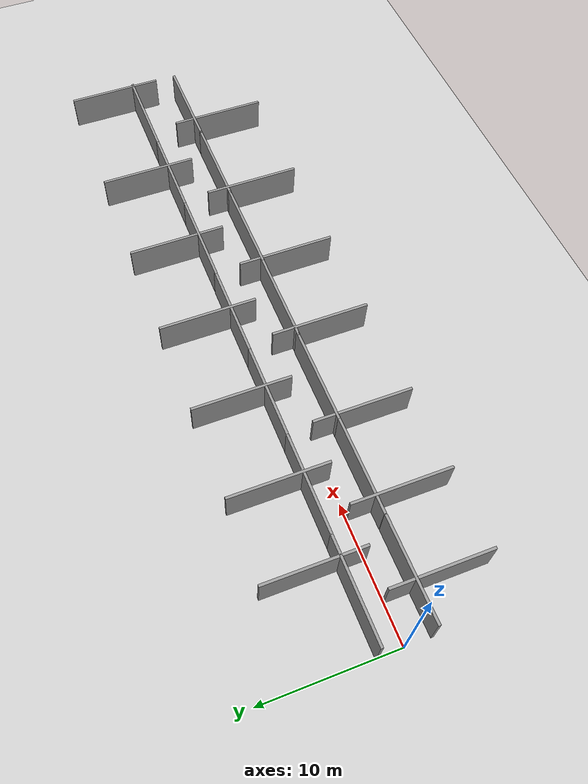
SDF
<sdf version="1.6">
 <world name="default">
  <plugin name="disable_physics" filename="libdisable_physics.so"/>
  <light name="sun" type="directional">
   <cast_shadows>0</cast_shadows>
   <pose>0 0 10 0 -0 0</pose>
   <diffuse>0.8 0.8 0.8 1</diffuse>
   <specular>0.2 0.2 0.2 1</specular>
   <attenuation>
    <range>1000</range>
    <constant>0.9</constant>
    <linear>0.01</linear>
    <quadratic>0.001</quadratic>
   </attenuation>
   <direction>-0.5 0.1 -0.9</direction>
  </light>
  <model name="ground_plane">
   <static>1</static>
   <link name="link">
    <collision name="collision">
     <geometry><plane><normal>0 0 1</normal><size>200 200</size></plane></geometry>
     <surface><friction><ode><mu>100</mu><mu2>50</mu2></ode></friction></surface>
    </collision>
    <visual name="visual">
     <cast_shadows>0</cast_shadows>
     <geometry><plane><normal>0 0 1</normal><size>200 200</size></plane></geometry>
     <material>
      <script><uri>file://media/materials/scripts/gazebo.material</uri><name>Gazebo/Grey</name></script>
     </material>
    </visual>
   </link>
  </model>
  <physics name="default_physics" default="0" type="ode">
   <max_step_size>0.001</max_step_size>
   <real_time_factor>1</real_time_factor>
   <real_time_update_rate>1000</real_time_update_rate>
  </physics>
  <scene><ambient>0.4 0.4 0.4 1</ambient><background>0.7 0.7 0.7 1</background><shadows>0</shadows></scene>
  <spherical_coordinates>
   <surface_model>EARTH_WGS84</surface_model>
   <latitude_deg>0</latitude_deg>
   <longitude_deg>0</longitude_deg>
   <elevation>0</elevation>
   <heading_deg>0</heading_deg>
  </spherical_coordinates>
  <gravity>0 0 -9.8</gravity>
  <magnetic_field>6e-06 2.3e-05 -4.2e-05</magnetic_field>
  <atmosphere type="adiabatic"/>
  <model name="grey_wall">
   <static>1</static>
   <link name="link">
    <pose>0 0 1.4 0 -0 0</pose>
    <collision name="collision"><geometry><box><size>7.5 0.2 2.8</size></box></geometry></collision>
    <visual name="visual">
     <cast_shadows>0</cast_shadows>
     <geometry><box><size>7.5 0.2 2.8</size></box></geometry>
     <material>
      <script>
       <uri>model://grey_wall/materials/scripts</uri>
       <uri>model://grey_wall/materials/textures</uri>
       <name>vrc/grey_wall</name>
      </script>
     </material>
    </visual>
   </link>
   <pose>15.2035 -3.78052 0 0 0 -1.57254</pose>
  </model>
  <model name="grey_wall_clone">
   <static>1</static>
   <link name="link">
    <pose>0 0 1.4 0 -0 0</pose>
    <collision name="collision"><geometry><box><size>7.5 0.2 2.8</size></box></geometry></collision>
    <visual name="visual">
     <cast_shadows>0</cast_shadows>
     <geometry><box><size>7.5 0.2 2.8</size></box></geometry>
     <material>
      <script>
       <uri>model://grey_wall/materials/scripts</uri>
       <uri>model://grey_wall/materials/textures</uri>
       <name>vrc/grey_wall</name>
      </script>
     </material>
    </visual>
   </link>
   <pose>3.0324 -3.71524 0 0 0 -1.57254</pose>
  </model>
  <model name="grey_wall_clone_0">
   <static>1</static>
   <link name="link">
    <pose>0 0 1.4 0 -0 0</pose>
    <collision name="collision"><geometry><box><size>7.5 0.2 2.8</size></box></geometry></collision>
    <visual name="visual">
     <cast_shadows>0</cast_shadows>
     <geometry><box><size>7.5 0.2 2.8</size></box></geometry>
     <material>
      <script>
       <uri>model://grey_wall/materials/scripts</uri>
       <uri>model://grey_wall/materials/textures</uri>
       <name>vrc/grey_wall</name>
      </script>
     </material>
    </visual>
   </link>
   <pose>8.88917 -3.75748 0 0 0 -1.57254</pose>
  </model>
  <model name="grey_wall_clone_1">
   <static>1</static>
   <link name="link">
    <pose>0 0 1.4 0 -0 0</pose>
    <collision name="collision"><geometry><box><size>7.5 0.2 2.8</size></box></geometry></collision>
    <visual name="visual">
     <cast_shadows>0</cast_shadows>
     <geometry><box><size>7.5 0.2 2.8</size></box></geometry>
     <material>
      <script>
       <uri>model://grey_wall/materials/scripts</uri>
       <uri>model://grey_wall/materials/textures</uri>
       <name>vrc/grey_wall</name>
      </script>
     </material>
    </visual>
   </link>
   <pose>5.98745 3.68305 0 0 0 -1.57254</pose>
  </model>
  <model name="grey_wall_clone_2">
   <static>1</static>
   <link name="link">
    <pose>0 0 1.4 0 -0 0</pose>
    <collision name="collision"><geometry><box><size>7.5 0.2 2.8</size></box></geometry></collision>
    <visual name="visual">
     <cast_shadows>0</cast_shadows>
     <geometry><box><size>7.5 0.2 2.8</size></box></geometry>
     <material>
      <script>
       <uri>model://grey_wall/materials/scripts</uri>
       <uri>model://grey_wall/materials/textures</uri>
       <name>vrc/grey_wall</name>
      </script>
     </material>
    </visual>
   </link>
   <pose>12.0638 3.68146 0 0 0 -1.57254</pose>
  </model>
  <model name="grey_wall_clone_1_clone_clone">
   <static>1</static>
   <link name="link">
    <pose>0 0 1.4 0 -0 0</pose>
    <collision name="collision"><geometry><box><size>7.5 0.2 2.8</size></box></geometry></collision>
    <visual name="visual">
     <cast_shadows>0</cast_shadows>
     <geometry><box><size>7.5 0.2 2.8</size></box></geometry>
     <material>
      <script>
       <uri>model://grey_wall/materials/scripts</uri>
       <uri>model://grey_wall/materials/textures</uri>
       <name>vrc/grey_wall</name>
      </script>
     </material>
    </visual>
   </link>
   <pose>11.1949 1.92433 0 0 -0 0.005363</pose>
  </model>
  <model name="grey_wall_clone_1_clone_clone_0">
   <static>1</static>
   <link name="link">
    <pose>0 0 1.4 0 -0 0</pose>
    <collision name="collision"><geometry><box><size>7.5 0.2 2.8</size></box></geometry></collision>
    <visual name="visual">
     <cast_shadows>0</cast_shadows>
     <geometry><box><size>7.5 0.2 2.8</size></box></geometry>
     <material>
      <script>
       <uri>model://grey_wall/materials/scripts</uri>
       <uri>model://grey_wall/materials/textures</uri>
       <name>vrc/grey_wall</name>
      </script>
     </material>
    </visual>
   </link>
   <pose>3.70367 -1.88899 0 0 -0 0.005363</pose>
  </model>
  <model name="grey_wall_clone_1_clone_clone_1">
   <static>1</static>
   <link name="link">
    <pose>0 0 1.4 0 -0 0</pose>
    <collision name="collision"><geometry><box><size>7.5 0.2 2.8</size></box></geometry></collision>
    <visual name="visual">
     <cast_shadows>0</cast_shadows>
     <geometry><box><size>7.5 0.2 2.8</size></box></geometry>
     <material>
      <script>
       <uri>model://grey_wall/materials/scripts</uri>
       <uri>model://grey_wall/materials/textures</uri>
       <name>vrc/grey_wall</name>
      </script>
     </material>
    </visual>
   </link>
   <pose>11.2456 -1.84641 0 0 -0 0.005363</pose>
  </model>
  <model name="grey_wall_clone_1_clone_clone_3">
   <static>1</static>
   <link name="link">
    <pose>0 0 1.4 0 -0 0</pose>
    <collision name="collision"><geometry><box><size>7.5 0.2 2.8</size></box></geometry></collision>
    <visual name="visual">
     <cast_shadows>0</cast_shadows>
     <geometry><box><size>7.5 0.2 2.8</size></box></geometry>
     <material>
      <script>
       <uri>model://grey_wall/materials/scripts</uri>
       <uri>model://grey_wall/materials/textures</uri>
       <name>vrc/grey_wall</name>
      </script>
     </material>
    </visual>
   </link>
   <pose>3.71914 1.89195 0 0 -0 0.005363</pose>
  </model>
  <model name="grey_wall_clone_3">
   <static>1</static>
   <link name="link">
    <pose>0 0 1.4 0 -0 0</pose>
    <collision name="collision"><geometry><box><size>7.5 0.2 2.8</size></box></geometry></collision>
    <visual name="visual">
     <cast_shadows>0</cast_shadows>
     <geometry><box><size>7.5 0.2 2.8</size></box></geometry>
     <material>
      <script>
       <uri>model://grey_wall/materials/scripts</uri>
       <uri>model://grey_wall/materials/textures</uri>
       <name>vrc/grey_wall</name>
      </script>
     </material>
    </visual>
   </link>
   <pose>19.015 3.72042 0 0 0 -1.57254</pose>
  </model>
  <model name="grey_wall_clone_1_clone_clone_clone">
   <static>1</static>
   <link name="link">
    <pose>0 0 1.4 0 -0 0</pose>
    <collision name="collision"><geometry><box><size>7.5 0.2 2.8</size></box></geometry></collision>
    <visual name="visual">
     <cast_shadows>0</cast_shadows>
     <geometry><box><size>7.5 0.2 2.8</size></box></geometry>
     <material>
      <script>
       <uri>model://grey_wall/materials/scripts</uri>
       <uri>model://grey_wall/materials/textures</uri>
       <name>vrc/grey_wall</name>
      </script>
     </material>
    </visual>
   </link>
   <pose>18.4188 1.95142 0 0 -0 0.005363</pose>
  </model>
  <model name="grey_wall_clone_1_clone_clone_clone_0">
   <static>1</static>
   <link name="link">
    <pose>0 0 1.4 0 -0 0</pose>
    <collision name="collision"><geometry><box><size>7.5 0.2 2.8</size></box></geometry></collision>
    <visual name="visual">
     <cast_shadows>0</cast_shadows>
     <geometry><box><size>7.5 0.2 2.8</size></box></geometry>
     <material>
      <script>
       <uri>model://grey_wall/materials/scripts</uri>
       <uri>model://grey_wall/materials/textures</uri>
       <name>vrc/grey_wall</name>
      </script>
     </material>
    </visual>
   </link>
   <pose>18.5566 -1.80083 0 0 -0 0.005363</pose>
  </model>
  <model name="grey_wall_clone_1_clone_clone_clone_1">
   <static>1</static>
   <link name="link">
    <pose>0 0 1.4 0 -0 0</pose>
    <collision name="collision"><geometry><box><size>7.5 0.2 2.8</size></box></geometry></collision>
    <visual name="visual">
     <cast_shadows>0</cast_shadows>
     <geometry><box><size>7.5 0.2 2.8</size></box></geometry>
     <material>
      <script>
       <uri>model://grey_wall/materials/scripts</uri>
       <uri>model://grey_wall/materials/textures</uri>
       <name>vrc/grey_wall</name>
      </script>
     </material>
    </visual>
   </link>
   <pose>25.814 1.98162 0 0 -0 0.005363</pose>
  </model>
  <model name="grey_wall_clone_1_clone_clone_clone_2">
   <static>1</static>
   <link name="link">
    <pose>0 0 1.4 0 -0 0</pose>
    <collision name="collision"><geometry><box><size>7.5 0.2 2.8</size></box></geometry></collision>
    <visual name="visual">
     <cast_shadows>0</cast_shadows>
     <geometry><box><size>7.5 0.2 2.8</size></box></geometry>
     <material>
      <script>
       <uri>model://grey_wall/materials/scripts</uri>
       <uri>model://grey_wall/materials/textures</uri>
       <name>vrc/grey_wall</name>
      </script>
     </material>
    </visual>
   </link>
   <pose>25.7842 -1.78208 0 0 -0 0.005363</pose>
  </model>
  <model name="grey_wall_clone_1_clone_clone_clone_3">
   <static>1</static>
   <link name="link">
    <pose>0 0 1.4 0 -0 0</pose>
    <collision name="collision"><geometry><box><size>7.5 0.2 2.8</size></box></geometry></collision>
    <visual name="visual">
     <cast_shadows>0</cast_shadows>
     <geometry><box><size>7.5 0.2 2.8</size></box></geometry>
     <material>
      <script>
       <uri>model://grey_wall/materials/scripts</uri>
       <uri>model://grey_wall/materials/textures</uri>
       <name>vrc/grey_wall</name>
      </script>
     </material>
    </visual>
   </link>
   <pose>33.07 2.00215 0 0 -0 0.005363</pose>
  </model>
  <model name="grey_wall_clone_1_clone_clone_clone_4">
   <static>1</static>
   <link name="link">
    <pose>0 0 1.4 0 -0 0</pose>
    <collision name="collision"><geometry><box><size>7.5 0.2 2.8</size></box></geometry></collision>
    <visual name="visual">
     <cast_shadows>0</cast_shadows>
     <geometry><box><size>7.5 0.2 2.8</size></box></geometry>
     <material>
      <script>
       <uri>model://grey_wall/materials/scripts</uri>
       <uri>model://grey_wall/materials/textures</uri>
       <name>vrc/grey_wall</name>
      </script>
     </material>
    </visual>
   </link>
   <pose>40.4497 2.04069 0 0 -0 0.005363</pose>
  </model>
  <model name="grey_wall_clone_1_clone_clone_clone_5">
   <static>1</static>
   <link name="link">
    <pose>0 0 1.4 0 -0 0</pose>
    <collision name="collision"><geometry><box><size>7.5 0.2 2.8</size></box></geometry></collision>
    <visual name="visual">
     <cast_shadows>0</cast_shadows>
     <geometry><box><size>7.5 0.2 2.8</size></box></geometry>
     <material>
      <script>
       <uri>model://grey_wall/materials/scripts</uri>
       <uri>model://grey_wall/materials/textures</uri>
       <name>vrc/grey_wall</name>
      </script>
     </material>
    </visual>
   </link>
   <pose>33.0509 -1.76727 0 0 -0 0.005363</pose>
  </model>
  <model name="grey_wall_clone_1_clone_clone_clone_6">
   <static>1</static>
   <link name="link">
    <pose>0 0 1.4 0 -0 0</pose>
    <collision name="collision"><geometry><box><size>7.5 0.2 2.8</size></box></geometry></collision>
    <visual name="visual">
     <cast_shadows>0</cast_shadows>
     <geometry><box><size>7.5 0.2 2.8</size></box></geometry>
     <material>
      <script>
       <uri>model://grey_wall/materials/scripts</uri>
       <uri>model://grey_wall/materials/textures</uri>
       <name>vrc/grey_wall</name>
      </script>
     </material>
    </visual>
   </link>
   <pose>40.2279 -1.73423 0 0 -0 0.005363</pose>
  </model>
  <model name="grey_wall_clone_1_clone_clone_clone_7">
   <static>1</static>
   <link name="link">
    <pose>0 0 1.4 0 -0 0</pose>
    <collision name="collision"><geometry><box><size>7.5 0.2 2.8</size></box></geometry></collision>
    <visual name="visual">
     <cast_shadows>0</cast_shadows>
     <geometry><box><size>7.5 0.2 2.8</size></box></geometry>
     <material>
      <script>
       <uri>model://grey_wall/materials/scripts</uri>
       <uri>model://grey_wall/materials/textures</uri>
       <name>vrc/grey_wall</name>
      </script>
     </material>
    </visual>
   </link>
   <pose>47.7651 2.07036 0 0 -0 0.005363</pose>
  </model>
  <model name="grey_wall_clone_1_clone_clone_clone_8">
   <static>1</static>
   <link name="link">
    <pose>0 0 1.4 0 -0 0</pose>
    <collision name="collision"><geometry><box><size>7.5 0.2 2.8</size></box></geometry></collision>
    <visual name="visual">
     <cast_shadows>0</cast_shadows>
     <geometry><box><size>7.5 0.2 2.8</size></box></geometry>
     <material>
      <script>
       <uri>model://grey_wall/materials/scripts</uri>
       <uri>model://grey_wall/materials/textures</uri>
       <name>vrc/grey_wall</name>
      </script>
     </material>
    </visual>
   </link>
   <pose>47.5402 -1.69776 0 0 -0 0.005363</pose>
  </model>
  <model name="grey_wall_clone_3_clone">
   <static>1</static>
   <link name="link">
    <pose>0 0 1.4 0 -0 0</pose>
    <collision name="collision"><geometry><box><size>7.5 0.2 2.8</size></box></geometry></collision>
    <visual name="visual">
     <cast_shadows>0</cast_shadows>
     <geometry><box><size>7.5 0.2 2.8</size></box></geometry>
     <material>
      <script>
       <uri>model://grey_wall/materials/scripts</uri>
       <uri>model://grey_wall/materials/textures</uri>
       <name>vrc/grey_wall</name>
      </script>
     </material>
    </visual>
   </link>
   <pose>22.7633 -3.77563 0 0 0 -1.57254</pose>
  </model>
  <model name="grey_wall_clone_3_clone_0">
   <static>1</static>
   <link name="link">
    <pose>0 0 1.4 0 -0 0</pose>
    <collision name="collision"><geometry><box><size>7.5 0.2 2.8</size></box></geometry></collision>
    <visual name="visual">
     <cast_shadows>0</cast_shadows>
     <geometry><box><size>7.5 0.2 2.8</size></box></geometry>
     <material>
      <script>
       <uri>model://grey_wall/materials/scripts</uri>
       <uri>model://grey_wall/materials/textures</uri>
       <name>vrc/grey_wall</name>
      </script>
     </material>
    </visual>
   </link>
   <pose>26.1009 3.77092 0 0 0 -1.57254</pose>
  </model>
  <model name="grey_wall_clone_3_clone_1">
   <static>1</static>
   <link name="link">
    <pose>0 0 1.4 0 -0 0</pose>
    <collision name="collision"><geometry><box><size>7.5 0.2 2.8</size></box></geometry></collision>
    <visual name="visual">
     <cast_shadows>0</cast_shadows>
     <geometry><box><size>7.5 0.2 2.8</size></box></geometry>
     <material>
      <script>
       <uri>model://grey_wall/materials/scripts</uri>
       <uri>model://grey_wall/materials/textures</uri>
       <name>vrc/grey_wall</name>
      </script>
     </material>
    </visual>
   </link>
   <pose>29.5674 -3.7544 0 0 0 -1.57254</pose>
  </model>
  <model name="grey_wall_clone_3_clone_2">
   <static>1</static>
   <link name="link">
    <pose>0 0 1.4 0 -0 0</pose>
    <collision name="collision"><geometry><box><size>7.5 0.2 2.8</size></box></geometry></collision>
    <visual name="visual">
     <cast_shadows>0</cast_shadows>
     <geometry><box><size>7.5 0.2 2.8</size></box></geometry>
     <material>
      <script>
       <uri>model://grey_wall/materials/scripts</uri>
       <uri>model://grey_wall/materials/textures</uri>
       <name>vrc/grey_wall</name>
      </script>
     </material>
    </visual>
   </link>
   <pose>33.4808 3.77759 0 0 0 -1.57254</pose>
  </model>
  <model name="grey_wall_clone_3_clone_3">
   <static>1</static>
   <link name="link">
    <pose>0 0 1.4 0 -0 0</pose>
    <collision name="collision"><geometry><box><size>7.5 0.2 2.8</size></box></geometry></collision>
    <visual name="visual">
     <cast_shadows>0</cast_shadows>
     <geometry><box><size>7.5 0.2 2.8</size></box></geometry>
     <material>
      <script>
       <uri>model://grey_wall/materials/scripts</uri>
       <uri>model://grey_wall/materials/textures</uri>
       <name>vrc/grey_wall</name>
      </script>
     </material>
    </visual>
   </link>
   <pose>37.2384 -3.81422 0 0 0 -1.57254</pose>
  </model>
  <model name="grey_wall_clone_3_clone_4">
   <static>1</static>
   <link name="link">
    <pose>0 0 1.4 0 -0 0</pose>
    <collision name="collision"><geometry><box><size>7.5 0.2 2.8</size></box></geometry></collision>
    <visual name="visual">
     <cast_shadows>0</cast_shadows>
     <geometry><box><size>7.5 0.2 2.8</size></box></geometry>
     <material>
      <script>
       <uri>model://grey_wall/materials/scripts</uri>
       <uri>model://grey_wall/materials/textures</uri>
       <name>vrc/grey_wall</name>
      </script>
     </material>
    </visual>
   </link>
   <pose>41.2106 3.74918 0 0 0 -1.57254</pose>
  </model>
  <model name="grey_wall_clone_3_clone_5">
   <static>1</static>
   <link name="link">
    <pose>0 0 1.4 0 -0 0</pose>
    <collision name="collision"><geometry><box><size>7.5 0.2 2.8</size></box></geometry></collision>
    <visual name="visual">
     <cast_shadows>0</cast_shadows>
     <geometry><box><size>7.5 0.2 2.8</size></box></geometry>
     <material>
      <script>
       <uri>model://grey_wall/materials/scripts</uri>
       <uri>model://grey_wall/materials/textures</uri>
       <name>vrc/grey_wall</name>
      </script>
     </material>
    </visual>
   </link>
   <pose>45.5936 -3.80766 0 0 0 -1.57254</pose>
  </model>
  <model name="grey_wall_clone_3_clone_6">
   <static>1</static>
   <link name="link">
    <pose>0 0 1.4 0 -0 0</pose>
    <collision name="collision"><geometry><box><size>7.5 0.2 2.8</size></box></geometry></collision>
    <visual name="visual">
     <cast_shadows>0</cast_shadows>
     <geometry><box><size>7.5 0.2 2.8</size></box></geometry>
     <material>
      <script>
       <uri>model://grey_wall/materials/scripts</uri>
       <uri>model://grey_wall/materials/textures</uri>
       <name>vrc/grey_wall</name>
      </script>
     </material>
    </visual>
   </link>
   <pose>51.2865 3.72528 0 0 0 -1.57254</pose>
  </model>
 </world>
</sdf>
